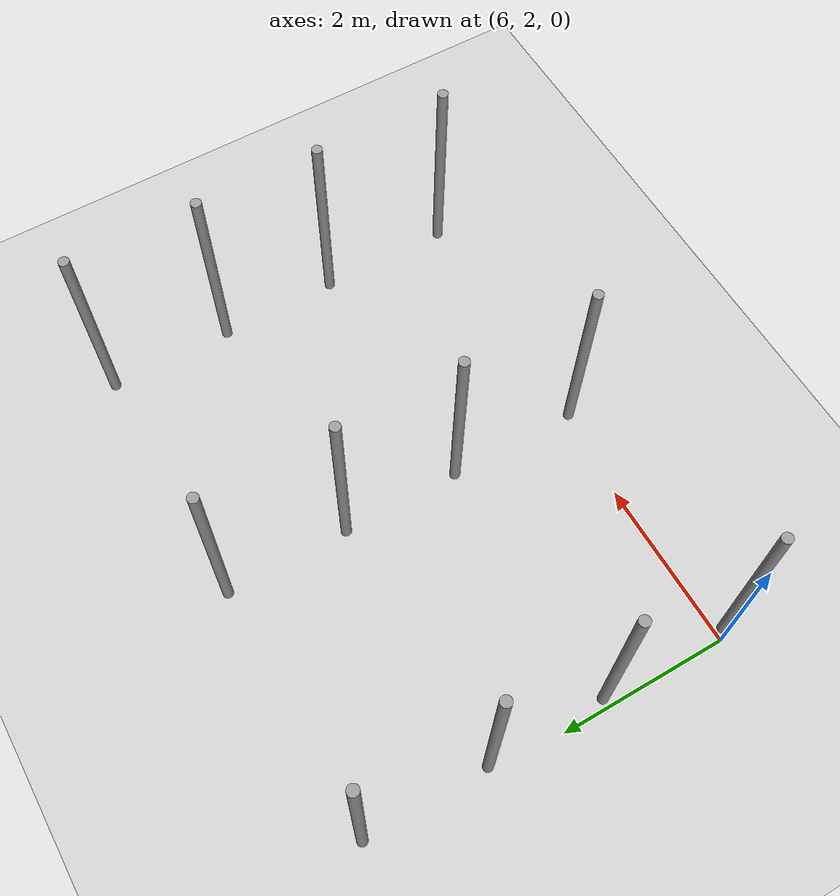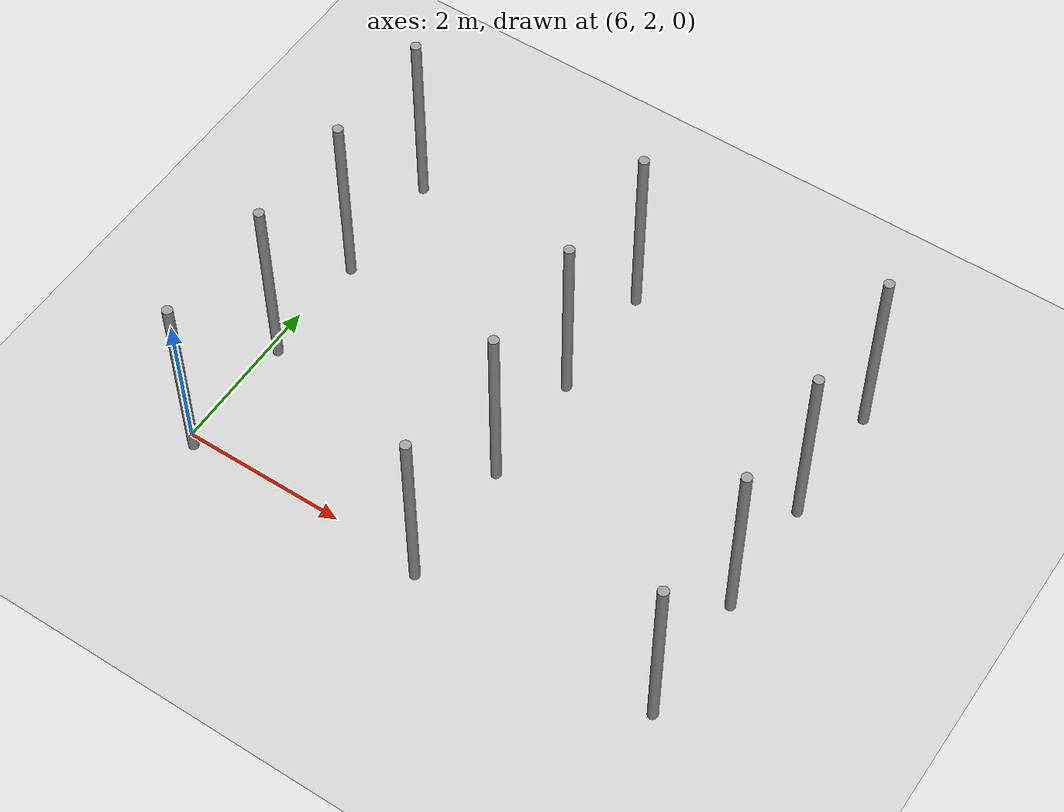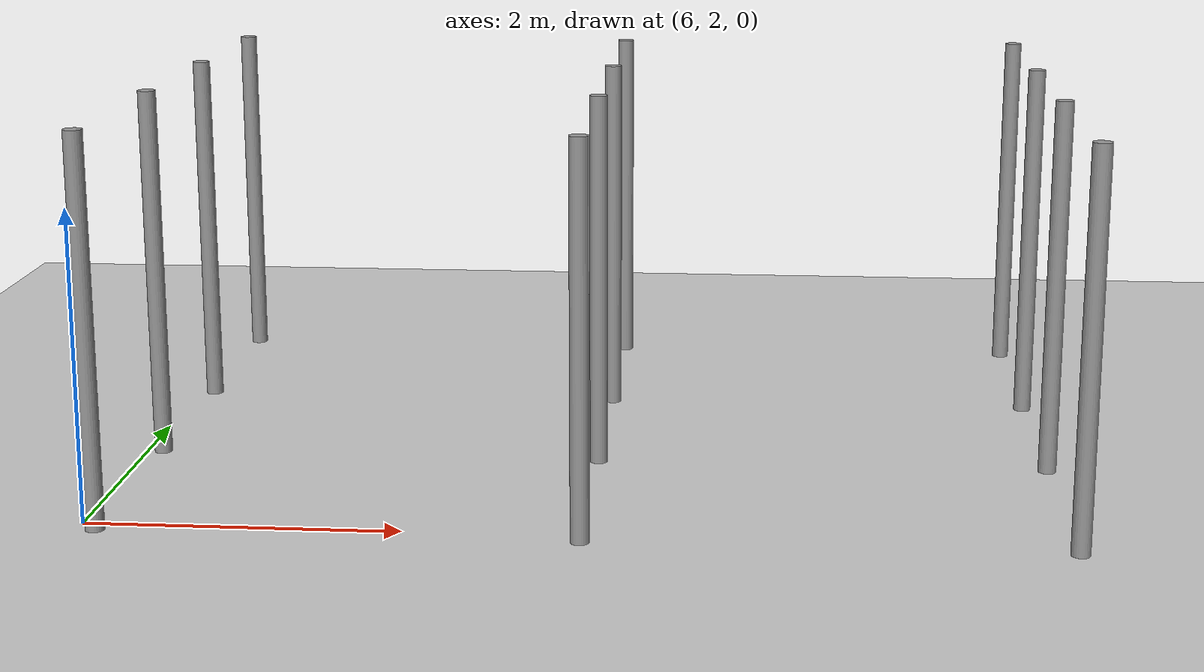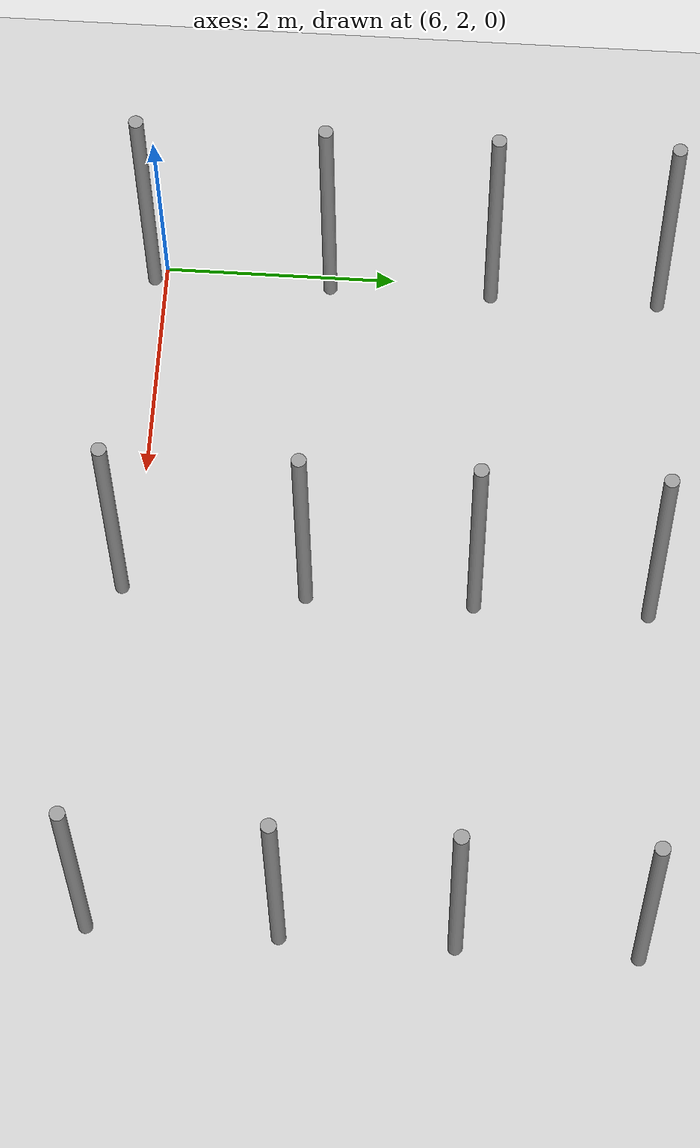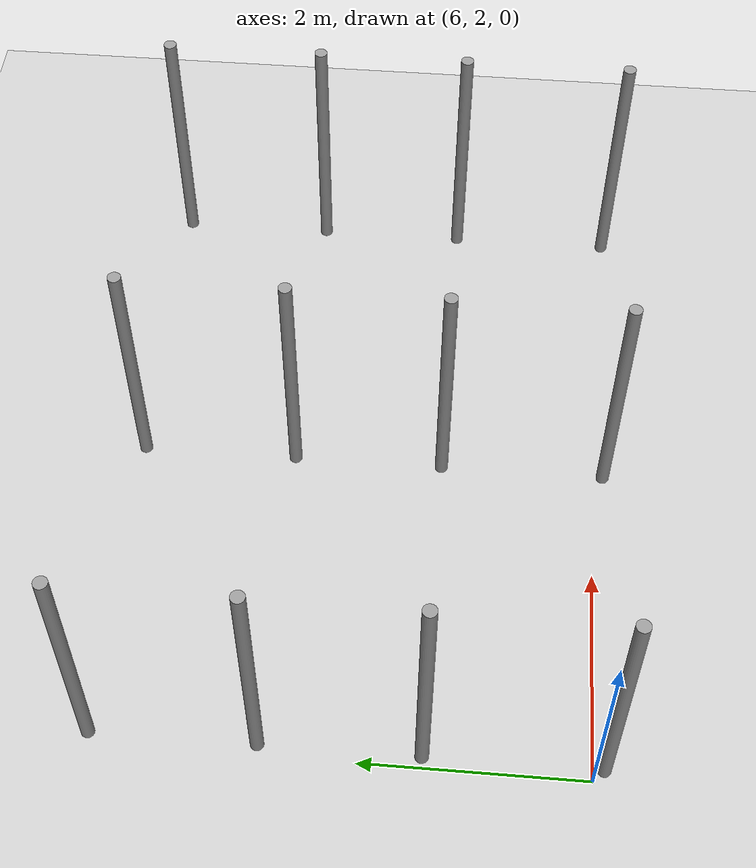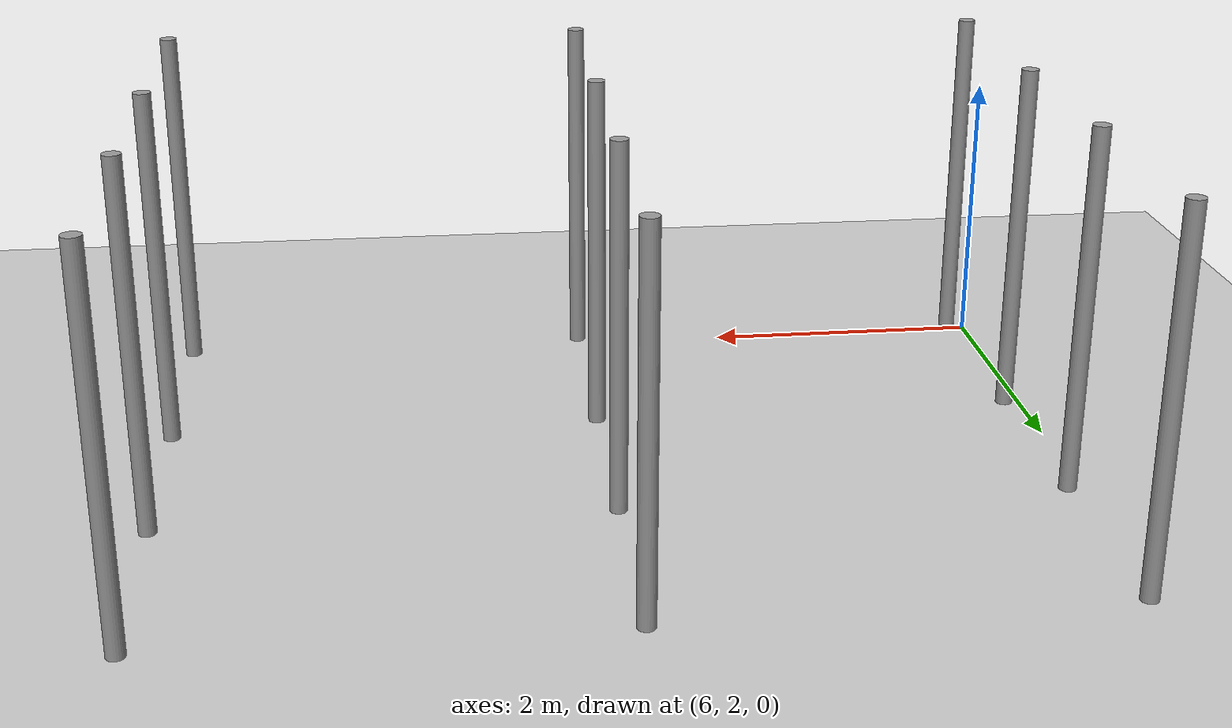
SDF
<sdf version="1.6">
 <world name="default">
  <model name="ground_plane">
   <static>1</static>
   <link name="link">
    <collision name="collision">
     <geometry><plane><normal>0 0 1</normal><size>100 100</size></plane></geometry>
     <surface><friction><ode><mu>100</mu><mu2>50</mu2></ode></friction></surface>
    </collision>
    <visual name="visual">
     <cast_shadows>0</cast_shadows>
     <geometry><plane><normal>0 0 1</normal><size>100 100</size></plane></geometry>
     <material>
      <script><uri>file://media/materials/scripts/gazebo.material</uri><name>Gazebo/Grey</name></script>
     </material>
    </visual>
   </link>
  </model>
  <model name="pole">
   <link name="link_0">
    <inertial>
     <mass>0.0364582</mass>
     <inertia>
      <ixx>0.00312124</ixx>
      <ixy>0</ixy>
      <ixz>0</ixz>
      <iyy>0.00312124</iyy>
      <iyz>0</iyz>
      <izz>0.00016615</izz>
     </inertia>
    </inertial>
    <visual name="visual">
     <geometry><cylinder><radius>0.06</radius><length>2.5</length></cylinder></geometry>
     <material>
      <lighting>1</lighting>
      <script><uri>file://media/materials/scripts/gazebo.material</uri><name>Gazebo/Grey</name></script>
      <ambient>0.3 0.3 0.3 1</ambient>
      <diffuse>0.7 0.7 0.7 1</diffuse>
      <specular>0.01 0.01 0.01 1</specular>
      <emissive>0 0 0 1</emissive>
      <shader type="vertex"><normal_map>__default__</normal_map></shader>
     </material>
    </visual>
    <collision name="collision">
     <geometry><cylinder><radius>0.06</radius><length>2.5</length></cylinder></geometry>
     <surface>
      <friction>
       <ode><mu>1</mu><mu2>1</mu2><fdir1>0 0 0</fdir1><slip1>0</slip1><slip2>0</slip2></ode>
       <torsional>
        <coefficient>1</coefficient>
        <patch_radius>0</patch_radius>
        <surface_radius>0</surface_radius>
        <use_patch_radius>1</use_patch_radius>
        <ode><slip>0</slip></ode>
       </torsional>
      </friction>
      <bounce><restitution_coefficient>0</restitution_coefficient><threshold>1e+06</threshold></bounce>
      <contact>
       <collide_without_contact>0</collide_without_contact>
       <collide_without_contact_bitmask>1</collide_without_contact_bitmask>
       <collide_bitmask>1</collide_bitmask>
       <ode>
        <soft_cfm>0</soft_cfm>
        <soft_erp>0.2</soft_erp>
        <kp>1e+13</kp>
        <kd>1</kd>
        <max_vel>0.01</max_vel>
        <min_depth>0</min_depth>
       </ode>
       <bullet>
        <split_impulse>1</split_impulse>
        <split_impulse_penetration_threshold>-0.01</split_impulse_penetration_threshold>
        <soft_cfm>0</soft_cfm>
        <soft_erp>0.2</soft_erp>
        <kp>1e+13</kp>
        <kd>1</kd>
       </bullet>
      </contact>
     </surface>
    </collision>
   </link>
   <static>0</static>
   <pose>6.10661 1.89909 1.25 -1e-06 -0 -0.056757</pose>
  </model>
  <model name="pole_0">
   <link name="link_0">
    <inertial>
     <mass>0.0364582</mass>
     <inertia>
      <ixx>0.00312124</ixx>
      <ixy>0</ixy>
      <ixz>0</ixz>
      <iyy>0.00312124</iyy>
      <iyz>0</iyz>
      <izz>0.00016615</izz>
     </inertia>
    </inertial>
    <visual name="visual">
     <geometry><cylinder><radius>0.06</radius><length>2.5</length></cylinder></geometry>
     <material>
      <lighting>1</lighting>
      <script><uri>file://media/materials/scripts/gazebo.material</uri><name>Gazebo/Grey</name></script>
      <ambient>0.3 0.3 0.3 1</ambient>
      <diffuse>0.7 0.7 0.7 1</diffuse>
      <specular>0.01 0.01 0.01 1</specular>
      <emissive>0 0 0 1</emissive>
      <shader type="vertex"><normal_map>__default__</normal_map></shader>
     </material>
    </visual>
    <collision name="collision">
     <geometry><cylinder><radius>0.06</radius><length>2.5</length></cylinder></geometry>
     <surface>
      <friction>
       <ode><mu>1</mu><mu2>1</mu2><fdir1>0 0 0</fdir1><slip1>0</slip1><slip2>0</slip2></ode>
       <torsional>
        <coefficient>1</coefficient>
        <patch_radius>0</patch_radius>
        <surface_radius>0</surface_radius>
        <use_patch_radius>1</use_patch_radius>
        <ode><slip>0</slip></ode>
       </torsional>
      </friction>
      <bounce><restitution_coefficient>0</restitution_coefficient><threshold>1e+06</threshold></bounce>
      <contact>
       <collide_without_contact>0</collide_without_contact>
       <collide_without_contact_bitmask>1</collide_without_contact_bitmask>
       <collide_bitmask>1</collide_bitmask>
       <ode>
        <soft_cfm>0</soft_cfm>
        <soft_erp>0.2</soft_erp>
        <kp>1e+13</kp>
        <kd>1</kd>
        <max_vel>0.01</max_vel>
        <min_depth>0</min_depth>
       </ode>
       <bullet>
        <split_impulse>1</split_impulse>
        <split_impulse_penetration_threshold>-0.01</split_impulse_penetration_threshold>
        <soft_cfm>0</soft_cfm>
        <soft_erp>0.2</soft_erp>
        <kp>1e+13</kp>
        <kd>1</kd>
       </bullet>
      </contact>
     </surface>
    </collision>
   </link>
   <static>0</static>
   <pose>6.10663 3.44508 1.25 0 -0 -0.026634</pose>
  </model>
  <model name="pole_1">
   <link name="link_0">
    <inertial>
     <mass>0.0364582</mass>
     <inertia>
      <ixx>0.00312124</ixx>
      <ixy>0</ixy>
      <ixz>0</ixz>
      <iyy>0.00312124</iyy>
      <iyz>0</iyz>
      <izz>0.00016615</izz>
     </inertia>
    </inertial>
    <visual name="visual">
     <geometry><cylinder><radius>0.06</radius><length>2.5</length></cylinder></geometry>
     <material>
      <lighting>1</lighting>
      <script><uri>file://media/materials/scripts/gazebo.material</uri><name>Gazebo/Grey</name></script>
      <ambient>0.3 0.3 0.3 1</ambient>
      <diffuse>0.7 0.7 0.7 1</diffuse>
      <specular>0.01 0.01 0.01 1</specular>
      <emissive>0 0 0 1</emissive>
      <shader type="vertex"><normal_map>__default__</normal_map></shader>
     </material>
    </visual>
    <collision name="collision">
     <geometry><cylinder><radius>0.06</radius><length>2.5</length></cylinder></geometry>
     <surface>
      <friction>
       <ode><mu>1</mu><mu2>1</mu2><fdir1>0 0 0</fdir1><slip1>0</slip1><slip2>0</slip2></ode>
       <torsional>
        <coefficient>1</coefficient>
        <patch_radius>0</patch_radius>
        <surface_radius>0</surface_radius>
        <use_patch_radius>1</use_patch_radius>
        <ode><slip>0</slip></ode>
       </torsional>
      </friction>
      <bounce><restitution_coefficient>0</restitution_coefficient><threshold>1e+06</threshold></bounce>
      <contact>
       <collide_without_contact>0</collide_without_contact>
       <collide_without_contact_bitmask>1</collide_without_contact_bitmask>
       <collide_bitmask>1</collide_bitmask>
       <ode>
        <soft_cfm>0</soft_cfm>
        <soft_erp>0.2</soft_erp>
        <kp>1e+13</kp>
        <kd>1</kd>
        <max_vel>0.01</max_vel>
        <min_depth>0</min_depth>
       </ode>
       <bullet>
        <split_impulse>1</split_impulse>
        <split_impulse_penetration_threshold>-0.01</split_impulse_penetration_threshold>
        <soft_cfm>0</soft_cfm>
        <soft_erp>0.2</soft_erp>
        <kp>1e+13</kp>
        <kd>1</kd>
       </bullet>
      </contact>
     </surface>
    </collision>
   </link>
   <static>0</static>
   <pose>6.10664 4.8541 1.25 -1e-06 -2e-06 -0.028886</pose>
  </model>
  <model name="pole_2">
   <link name="link_0">
    <inertial>
     <mass>0.0364582</mass>
     <inertia>
      <ixx>0.00312124</ixx>
      <ixy>0</ixy>
      <ixz>0</ixz>
      <iyy>0.00312124</iyy>
      <iyz>0</iyz>
      <izz>0.00016615</izz>
     </inertia>
    </inertial>
    <visual name="visual">
     <geometry><cylinder><radius>0.06</radius><length>2.5</length></cylinder></geometry>
     <material>
      <lighting>1</lighting>
      <script><uri>file://media/materials/scripts/gazebo.material</uri><name>Gazebo/Grey</name></script>
      <ambient>0.3 0.3 0.3 1</ambient>
      <diffuse>0.7 0.7 0.7 1</diffuse>
      <specular>0.01 0.01 0.01 1</specular>
      <emissive>0 0 0 1</emissive>
      <shader type="vertex"><normal_map>__default__</normal_map></shader>
     </material>
    </visual>
    <collision name="collision">
     <geometry><cylinder><radius>0.06</radius><length>2.5</length></cylinder></geometry>
     <surface>
      <friction>
       <ode><mu>1</mu><mu2>1</mu2><fdir1>0 0 0</fdir1><slip1>0</slip1><slip2>0</slip2></ode>
       <torsional>
        <coefficient>1</coefficient>
        <patch_radius>0</patch_radius>
        <surface_radius>0</surface_radius>
        <use_patch_radius>1</use_patch_radius>
        <ode><slip>0</slip></ode>
       </torsional>
      </friction>
      <bounce><restitution_coefficient>0</restitution_coefficient><threshold>1e+06</threshold></bounce>
      <contact>
       <collide_without_contact>0</collide_without_contact>
       <collide_without_contact_bitmask>1</collide_without_contact_bitmask>
       <collide_bitmask>1</collide_bitmask>
       <ode>
        <soft_cfm>0</soft_cfm>
        <soft_erp>0.2</soft_erp>
        <kp>1e+13</kp>
        <kd>1</kd>
        <max_vel>0.01</max_vel>
        <min_depth>0</min_depth>
       </ode>
       <bullet>
        <split_impulse>1</split_impulse>
        <split_impulse_penetration_threshold>-0.01</split_impulse_penetration_threshold>
        <soft_cfm>0</soft_cfm>
        <soft_erp>0.2</soft_erp>
        <kp>1e+13</kp>
        <kd>1</kd>
       </bullet>
      </contact>
     </surface>
    </collision>
   </link>
   <static>0</static>
   <pose>6.10626 6.31701 1.24999 0 -1e-06 -0.034234</pose>
  </model>
  <model name="pole_3">
   <link name="link_0">
    <inertial>
     <mass>0.0364582</mass>
     <inertia>
      <ixx>0.00312124</ixx>
      <ixy>0</ixy>
      <ixz>0</ixz>
      <iyy>0.00312124</iyy>
      <iyz>0</iyz>
      <izz>0.00016615</izz>
     </inertia>
    </inertial>
    <visual name="visual">
     <geometry><cylinder><radius>0.06</radius><length>2.5</length></cylinder></geometry>
     <material>
      <lighting>1</lighting>
      <script><uri>file://media/materials/scripts/gazebo.material</uri><name>Gazebo/Grey</name></script>
      <ambient>0.3 0.3 0.3 1</ambient>
      <diffuse>0.7 0.7 0.7 1</diffuse>
      <specular>0.01 0.01 0.01 1</specular>
      <emissive>0 0 0 1</emissive>
      <shader type="vertex"><normal_map>__default__</normal_map></shader>
     </material>
    </visual>
    <collision name="collision">
     <geometry><cylinder><radius>0.06</radius><length>2.5</length></cylinder></geometry>
     <surface>
      <friction>
       <ode><mu>1</mu><mu2>1</mu2><fdir1>0 0 0</fdir1><slip1>0</slip1><slip2>0</slip2></ode>
       <torsional>
        <coefficient>1</coefficient>
        <patch_radius>0</patch_radius>
        <surface_radius>0</surface_radius>
        <use_patch_radius>1</use_patch_radius>
        <ode><slip>0</slip></ode>
       </torsional>
      </friction>
      <bounce><restitution_coefficient>0</restitution_coefficient><threshold>1e+06</threshold></bounce>
      <contact>
       <collide_without_contact>0</collide_without_contact>
       <collide_without_contact_bitmask>1</collide_without_contact_bitmask>
       <collide_bitmask>1</collide_bitmask>
       <ode>
        <soft_cfm>0</soft_cfm>
        <soft_erp>0.2</soft_erp>
        <kp>1e+13</kp>
        <kd>1</kd>
        <max_vel>0.01</max_vel>
        <min_depth>0</min_depth>
       </ode>
       <bullet>
        <split_impulse>1</split_impulse>
        <split_impulse_penetration_threshold>-0.01</split_impulse_penetration_threshold>
        <soft_cfm>0</soft_cfm>
        <soft_erp>0.2</soft_erp>
        <kp>1e+13</kp>
        <kd>1</kd>
       </bullet>
      </contact>
     </surface>
    </collision>
   </link>
   <static>0</static>
   <pose>12.1067 1.89901 1.25 -1e-06 1e-06 -0.029918</pose>
  </model>
  <model name="pole_4">
   <link name="link_0">
    <inertial>
     <mass>0.0364582</mass>
     <inertia>
      <ixx>0.00312124</ixx>
      <ixy>0</ixy>
      <ixz>0</ixz>
      <iyy>0.00312124</iyy>
      <iyz>0</iyz>
      <izz>0.00016615</izz>
     </inertia>
    </inertial>
    <visual name="visual">
     <geometry><cylinder><radius>0.06</radius><length>2.5</length></cylinder></geometry>
     <material>
      <lighting>1</lighting>
      <script><uri>file://media/materials/scripts/gazebo.material</uri><name>Gazebo/Grey</name></script>
      <ambient>0.3 0.3 0.3 1</ambient>
      <diffuse>0.7 0.7 0.7 1</diffuse>
      <specular>0.01 0.01 0.01 1</specular>
      <emissive>0 0 0 1</emissive>
      <shader type="vertex"><normal_map>__default__</normal_map></shader>
     </material>
    </visual>
    <collision name="collision">
     <geometry><cylinder><radius>0.06</radius><length>2.5</length></cylinder></geometry>
     <surface>
      <friction>
       <ode><mu>1</mu><mu2>1</mu2><fdir1>0 0 0</fdir1><slip1>0</slip1><slip2>0</slip2></ode>
       <torsional>
        <coefficient>1</coefficient>
        <patch_radius>0</patch_radius>
        <surface_radius>0</surface_radius>
        <use_patch_radius>1</use_patch_radius>
        <ode><slip>0</slip></ode>
       </torsional>
      </friction>
      <bounce><restitution_coefficient>0</restitution_coefficient><threshold>1e+06</threshold></bounce>
      <contact>
       <collide_without_contact>0</collide_without_contact>
       <collide_without_contact_bitmask>1</collide_without_contact_bitmask>
       <collide_bitmask>1</collide_bitmask>
       <ode>
        <soft_cfm>0</soft_cfm>
        <soft_erp>0.2</soft_erp>
        <kp>1e+13</kp>
        <kd>1</kd>
        <max_vel>0.01</max_vel>
        <min_depth>0</min_depth>
       </ode>
       <bullet>
        <split_impulse>1</split_impulse>
        <split_impulse_penetration_threshold>-0.01</split_impulse_penetration_threshold>
        <soft_cfm>0</soft_cfm>
        <soft_erp>0.2</soft_erp>
        <kp>1e+13</kp>
        <kd>1</kd>
       </bullet>
      </contact>
     </surface>
    </collision>
   </link>
   <static>0</static>
   <pose>9.10661 3.44511 1.25 -1e-06 1e-06 -0.026029</pose>
  </model>
  <model name="pole_5">
   <link name="link_0">
    <inertial>
     <mass>0.0364582</mass>
     <inertia>
      <ixx>0.00312124</ixx>
      <ixy>0</ixy>
      <ixz>0</ixz>
      <iyy>0.00312124</iyy>
      <iyz>0</iyz>
      <izz>0.00016615</izz>
     </inertia>
    </inertial>
    <visual name="visual">
     <geometry><cylinder><radius>0.06</radius><length>2.5</length></cylinder></geometry>
     <material>
      <lighting>1</lighting>
      <script><uri>file://media/materials/scripts/gazebo.material</uri><name>Gazebo/Grey</name></script>
      <ambient>0.3 0.3 0.3 1</ambient>
      <diffuse>0.7 0.7 0.7 1</diffuse>
      <specular>0.01 0.01 0.01 1</specular>
      <emissive>0 0 0 1</emissive>
      <shader type="vertex"><normal_map>__default__</normal_map></shader>
     </material>
    </visual>
    <collision name="collision">
     <geometry><cylinder><radius>0.06</radius><length>2.5</length></cylinder></geometry>
     <surface>
      <friction>
       <ode><mu>1</mu><mu2>1</mu2><fdir1>0 0 0</fdir1><slip1>0</slip1><slip2>0</slip2></ode>
       <torsional>
        <coefficient>1</coefficient>
        <patch_radius>0</patch_radius>
        <surface_radius>0</surface_radius>
        <use_patch_radius>1</use_patch_radius>
        <ode><slip>0</slip></ode>
       </torsional>
      </friction>
      <bounce><restitution_coefficient>0</restitution_coefficient><threshold>1e+06</threshold></bounce>
      <contact>
       <collide_without_contact>0</collide_without_contact>
       <collide_without_contact_bitmask>1</collide_without_contact_bitmask>
       <collide_bitmask>1</collide_bitmask>
       <ode>
        <soft_cfm>0</soft_cfm>
        <soft_erp>0.2</soft_erp>
        <kp>1e+13</kp>
        <kd>1</kd>
        <max_vel>0.01</max_vel>
        <min_depth>0</min_depth>
       </ode>
       <bullet>
        <split_impulse>1</split_impulse>
        <split_impulse_penetration_threshold>-0.01</split_impulse_penetration_threshold>
        <soft_cfm>0</soft_cfm>
        <soft_erp>0.2</soft_erp>
        <kp>1e+13</kp>
        <kd>1</kd>
       </bullet>
      </contact>
     </surface>
    </collision>
   </link>
   <static>0</static>
   <pose>9.10666 4.85423 1.24999 0 -0 -0.0258</pose>
  </model>
  <model name="pole_6">
   <link name="link_0">
    <inertial>
     <mass>0.0364582</mass>
     <inertia>
      <ixx>0.00312124</ixx>
      <ixy>0</ixy>
      <ixz>0</ixz>
      <iyy>0.00312124</iyy>
      <iyz>0</iyz>
      <izz>0.00016615</izz>
     </inertia>
    </inertial>
    <visual name="visual">
     <geometry><cylinder><radius>0.06</radius><length>2.5</length></cylinder></geometry>
     <material>
      <lighting>1</lighting>
      <script><uri>file://media/materials/scripts/gazebo.material</uri><name>Gazebo/Grey</name></script>
      <ambient>0.3 0.3 0.3 1</ambient>
      <diffuse>0.7 0.7 0.7 1</diffuse>
      <specular>0.01 0.01 0.01 1</specular>
      <emissive>0 0 0 1</emissive>
      <shader type="vertex"><normal_map>__default__</normal_map></shader>
     </material>
    </visual>
    <collision name="collision">
     <geometry><cylinder><radius>0.06</radius><length>2.5</length></cylinder></geometry>
     <surface>
      <friction>
       <ode><mu>1</mu><mu2>1</mu2><fdir1>0 0 0</fdir1><slip1>0</slip1><slip2>0</slip2></ode>
       <torsional>
        <coefficient>1</coefficient>
        <patch_radius>0</patch_radius>
        <surface_radius>0</surface_radius>
        <use_patch_radius>1</use_patch_radius>
        <ode><slip>0</slip></ode>
       </torsional>
      </friction>
      <bounce><restitution_coefficient>0</restitution_coefficient><threshold>1e+06</threshold></bounce>
      <contact>
       <collide_without_contact>0</collide_without_contact>
       <collide_without_contact_bitmask>1</collide_without_contact_bitmask>
       <collide_bitmask>1</collide_bitmask>
       <ode>
        <soft_cfm>0</soft_cfm>
        <soft_erp>0.2</soft_erp>
        <kp>1e+13</kp>
        <kd>1</kd>
        <max_vel>0.01</max_vel>
        <min_depth>0</min_depth>
       </ode>
       <bullet>
        <split_impulse>1</split_impulse>
        <split_impulse_penetration_threshold>-0.01</split_impulse_penetration_threshold>
        <soft_cfm>0</soft_cfm>
        <soft_erp>0.2</soft_erp>
        <kp>1e+13</kp>
        <kd>1</kd>
       </bullet>
      </contact>
     </surface>
    </collision>
   </link>
   <static>0</static>
   <pose>9.10664 6.31703 1.24999 -1e-06 -0 -0.049285</pose>
  </model>
  <model name="pole_7">
   <link name="link_0">
    <inertial>
     <mass>0.0364582</mass>
     <inertia>
      <ixx>0.00312124</ixx>
      <ixy>0</ixy>
      <ixz>0</ixz>
      <iyy>0.00312124</iyy>
      <iyz>0</iyz>
      <izz>0.00016615</izz>
     </inertia>
    </inertial>
    <visual name="visual">
     <geometry><cylinder><radius>0.06</radius><length>2.5</length></cylinder></geometry>
     <material>
      <lighting>1</lighting>
      <script><uri>file://media/materials/scripts/gazebo.material</uri><name>Gazebo/Grey</name></script>
      <ambient>0.3 0.3 0.3 1</ambient>
      <diffuse>0.7 0.7 0.7 1</diffuse>
      <specular>0.01 0.01 0.01 1</specular>
      <emissive>0 0 0 1</emissive>
      <shader type="vertex"><normal_map>__default__</normal_map></shader>
     </material>
    </visual>
    <collision name="collision">
     <geometry><cylinder><radius>0.06</radius><length>2.5</length></cylinder></geometry>
     <surface>
      <friction>
       <ode><mu>1</mu><mu2>1</mu2><fdir1>0 0 0</fdir1><slip1>0</slip1><slip2>0</slip2></ode>
       <torsional>
        <coefficient>1</coefficient>
        <patch_radius>0</patch_radius>
        <surface_radius>0</surface_radius>
        <use_patch_radius>1</use_patch_radius>
        <ode><slip>0</slip></ode>
       </torsional>
      </friction>
      <bounce><restitution_coefficient>0</restitution_coefficient><threshold>1e+06</threshold></bounce>
      <contact>
       <collide_without_contact>0</collide_without_contact>
       <collide_without_contact_bitmask>1</collide_without_contact_bitmask>
       <collide_bitmask>1</collide_bitmask>
       <ode>
        <soft_cfm>0</soft_cfm>
        <soft_erp>0.2</soft_erp>
        <kp>1e+13</kp>
        <kd>1</kd>
        <max_vel>0.01</max_vel>
        <min_depth>0</min_depth>
       </ode>
       <bullet>
        <split_impulse>1</split_impulse>
        <split_impulse_penetration_threshold>-0.01</split_impulse_penetration_threshold>
        <soft_cfm>0</soft_cfm>
        <soft_erp>0.2</soft_erp>
        <kp>1e+13</kp>
        <kd>1</kd>
       </bullet>
      </contact>
     </surface>
    </collision>
   </link>
   <static>0</static>
   <pose>9.10658 1.89913 1.25 -1e-06 -0 -0.019363</pose>
  </model>
  <model name="pole_8">
   <link name="link_0">
    <inertial>
     <mass>0.0364582</mass>
     <inertia>
      <ixx>0.00312124</ixx>
      <ixy>0</ixy>
      <ixz>0</ixz>
      <iyy>0.00312124</iyy>
      <iyz>0</iyz>
      <izz>0.00016615</izz>
     </inertia>
    </inertial>
    <visual name="visual">
     <geometry><cylinder><radius>0.06</radius><length>2.5</length></cylinder></geometry>
     <material>
      <lighting>1</lighting>
      <script><uri>file://media/materials/scripts/gazebo.material</uri><name>Gazebo/Grey</name></script>
      <ambient>0.3 0.3 0.3 1</ambient>
      <diffuse>0.7 0.7 0.7 1</diffuse>
      <specular>0.01 0.01 0.01 1</specular>
      <emissive>0 0 0 1</emissive>
      <shader type="vertex"><normal_map>__default__</normal_map></shader>
     </material>
    </visual>
    <collision name="collision">
     <geometry><cylinder><radius>0.06</radius><length>2.5</length></cylinder></geometry>
     <surface>
      <friction>
       <ode><mu>1</mu><mu2>1</mu2><fdir1>0 0 0</fdir1><slip1>0</slip1><slip2>0</slip2></ode>
       <torsional>
        <coefficient>1</coefficient>
        <patch_radius>0</patch_radius>
        <surface_radius>0</surface_radius>
        <use_patch_radius>1</use_patch_radius>
        <ode><slip>0</slip></ode>
       </torsional>
      </friction>
      <bounce><restitution_coefficient>0</restitution_coefficient><threshold>1e+06</threshold></bounce>
      <contact>
       <collide_without_contact>0</collide_without_contact>
       <collide_without_contact_bitmask>1</collide_without_contact_bitmask>
       <collide_bitmask>1</collide_bitmask>
       <ode>
        <soft_cfm>0</soft_cfm>
        <soft_erp>0.2</soft_erp>
        <kp>1e+13</kp>
        <kd>1</kd>
        <max_vel>0.01</max_vel>
        <min_depth>0</min_depth>
       </ode>
       <bullet>
        <split_impulse>1</split_impulse>
        <split_impulse_penetration_threshold>-0.01</split_impulse_penetration_threshold>
        <soft_cfm>0</soft_cfm>
        <soft_erp>0.2</soft_erp>
        <kp>1e+13</kp>
        <kd>1</kd>
       </bullet>
      </contact>
     </surface>
    </collision>
   </link>
   <static>0</static>
   <pose>12.1067 3.4451 1.24999 -1e-06 -0 -0.023993</pose>
  </model>
  <model name="pole_9">
   <link name="link_0">
    <inertial>
     <mass>0.0364582</mass>
     <inertia>
      <ixx>0.00312124</ixx>
      <ixy>0</ixy>
      <ixz>0</ixz>
      <iyy>0.00312124</iyy>
      <iyz>0</iyz>
      <izz>0.00016615</izz>
     </inertia>
    </inertial>
    <visual name="visual">
     <geometry><cylinder><radius>0.06</radius><length>2.5</length></cylinder></geometry>
     <material>
      <lighting>1</lighting>
      <script><uri>file://media/materials/scripts/gazebo.material</uri><name>Gazebo/Grey</name></script>
      <ambient>0.3 0.3 0.3 1</ambient>
      <diffuse>0.7 0.7 0.7 1</diffuse>
      <specular>0.01 0.01 0.01 1</specular>
      <emissive>0 0 0 1</emissive>
      <shader type="vertex"><normal_map>__default__</normal_map></shader>
     </material>
    </visual>
    <collision name="collision">
     <geometry><cylinder><radius>0.06</radius><length>2.5</length></cylinder></geometry>
     <surface>
      <friction>
       <ode><mu>1</mu><mu2>1</mu2><fdir1>0 0 0</fdir1><slip1>0</slip1><slip2>0</slip2></ode>
       <torsional>
        <coefficient>1</coefficient>
        <patch_radius>0</patch_radius>
        <surface_radius>0</surface_radius>
        <use_patch_radius>1</use_patch_radius>
        <ode><slip>0</slip></ode>
       </torsional>
      </friction>
      <bounce><restitution_coefficient>0</restitution_coefficient><threshold>1e+06</threshold></bounce>
      <contact>
       <collide_without_contact>0</collide_without_contact>
       <collide_without_contact_bitmask>1</collide_without_contact_bitmask>
       <collide_bitmask>1</collide_bitmask>
       <ode>
        <soft_cfm>0</soft_cfm>
        <soft_erp>0.2</soft_erp>
        <kp>1e+13</kp>
        <kd>1</kd>
        <max_vel>0.01</max_vel>
        <min_depth>0</min_depth>
       </ode>
       <bullet>
        <split_impulse>1</split_impulse>
        <split_impulse_penetration_threshold>-0.01</split_impulse_penetration_threshold>
        <soft_cfm>0</soft_cfm>
        <soft_erp>0.2</soft_erp>
        <kp>1e+13</kp>
        <kd>1</kd>
       </bullet>
      </contact>
     </surface>
    </collision>
   </link>
   <static>0</static>
   <pose>12.1067 4.85408 1.24999 2e-06 -2e-06 -0.027981</pose>
  </model>
  <model name="pole_10">
   <link name="link_0">
    <inertial>
     <mass>0.0364582</mass>
     <inertia>
      <ixx>0.00312124</ixx>
      <ixy>0</ixy>
      <ixz>0</ixz>
      <iyy>0.00312124</iyy>
      <iyz>0</iyz>
      <izz>0.00016615</izz>
     </inertia>
    </inertial>
    <visual name="visual">
     <geometry><cylinder><radius>0.06</radius><length>2.5</length></cylinder></geometry>
     <material>
      <lighting>1</lighting>
      <script><uri>file://media/materials/scripts/gazebo.material</uri><name>Gazebo/Grey</name></script>
      <ambient>0.3 0.3 0.3 1</ambient>
      <diffuse>0.7 0.7 0.7 1</diffuse>
      <specular>0.01 0.01 0.01 1</specular>
      <emissive>0 0 0 1</emissive>
      <shader type="vertex"><normal_map>__default__</normal_map></shader>
     </material>
    </visual>
    <collision name="collision">
     <geometry><cylinder><radius>0.06</radius><length>2.5</length></cylinder></geometry>
     <surface>
      <friction>
       <ode><mu>1</mu><mu2>1</mu2><fdir1>0 0 0</fdir1><slip1>0</slip1><slip2>0</slip2></ode>
       <torsional>
        <coefficient>1</coefficient>
        <patch_radius>0</patch_radius>
        <surface_radius>0</surface_radius>
        <use_patch_radius>1</use_patch_radius>
        <ode><slip>0</slip></ode>
       </torsional>
      </friction>
      <bounce><restitution_coefficient>0</restitution_coefficient><threshold>1e+06</threshold></bounce>
      <contact>
       <collide_without_contact>0</collide_without_contact>
       <collide_without_contact_bitmask>1</collide_without_contact_bitmask>
       <collide_bitmask>1</collide_bitmask>
       <ode>
        <soft_cfm>0</soft_cfm>
        <soft_erp>0.2</soft_erp>
        <kp>1e+13</kp>
        <kd>1</kd>
        <max_vel>0.01</max_vel>
        <min_depth>0</min_depth>
       </ode>
       <bullet>
        <split_impulse>1</split_impulse>
        <split_impulse_penetration_threshold>-0.01</split_impulse_penetration_threshold>
        <soft_cfm>0</soft_cfm>
        <soft_erp>0.2</soft_erp>
        <kp>1e+13</kp>
        <kd>1</kd>
       </bullet>
      </contact>
     </surface>
    </collision>
   </link>
   <static>0</static>
   <pose>12.1066 6.31713 1.24999 -1e-06 -5e-06 -0.02499</pose>
  </model>
 </world>
</sdf>
